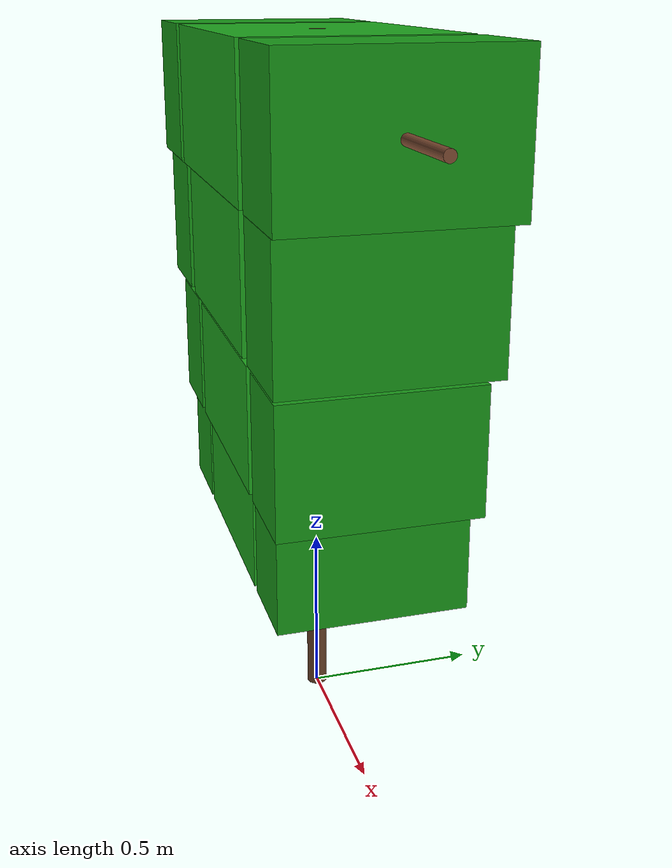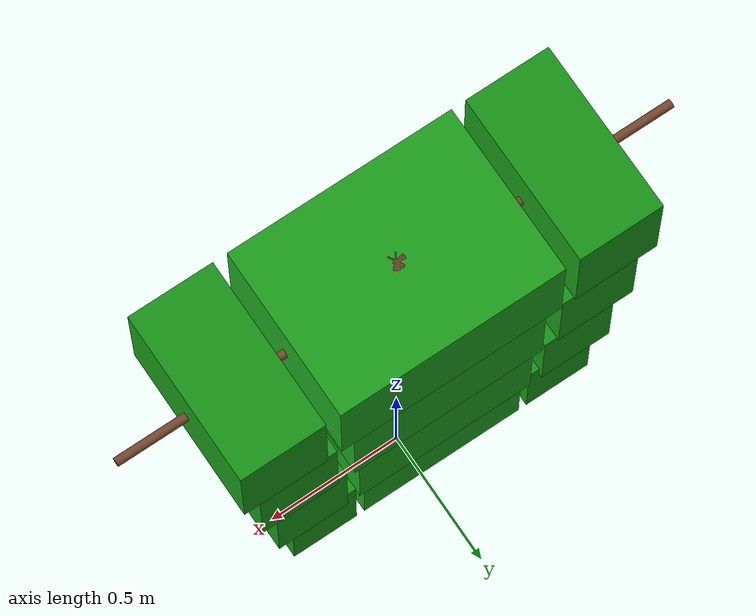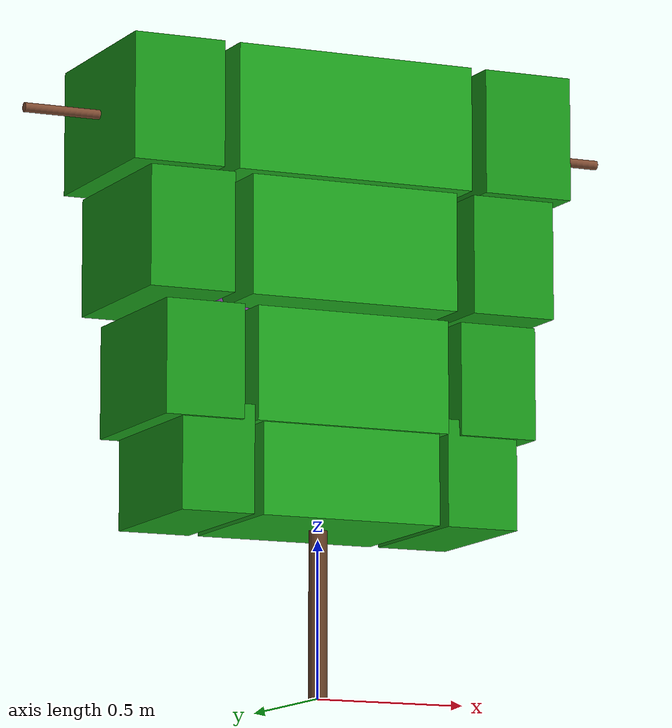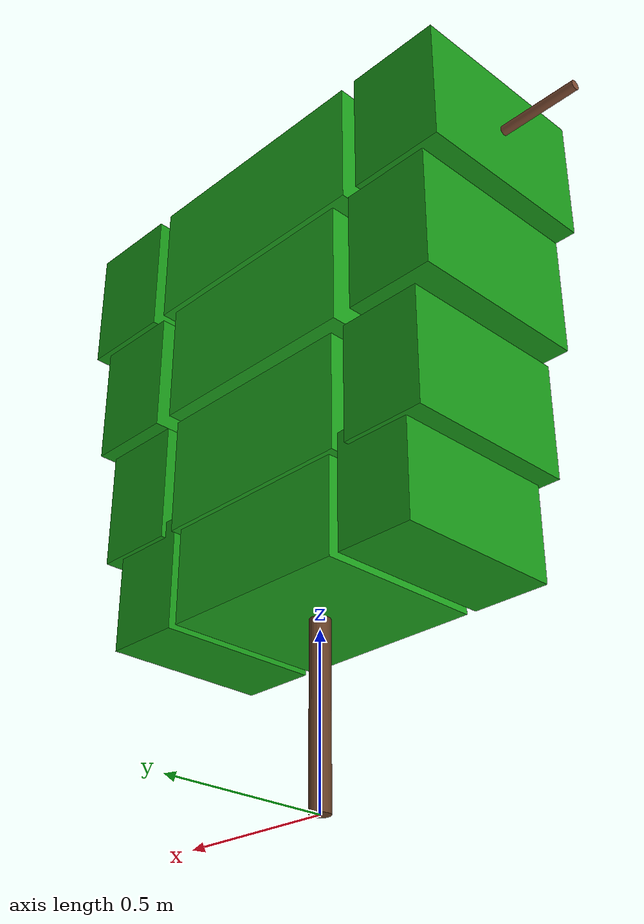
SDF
<?xml version="1.0" ?>
<sdf version="1.6">
  <model name="vine_plant_with_leaves">
    <static>true</static>
    <link name="link">

      <!-- TRONC PRINCIPAL (hauteur 2m) -->
      <collision name="trunk">
        <pose>0 0 1.0 0 0 0</pose>
        <geometry>
          <cylinder>
            <radius>0.03</radius>
            <length>2.0</length>
          </cylinder>
        </geometry>
      </collision>
      <visual name="trunk">
        <pose>0 0 1.0 0 0 0</pose>
        <geometry>
          <cylinder>
            <radius>0.03</radius>
            <length>2.0</length>
          </cylinder>
        </geometry>
        <material>
          <ambient>0.4 0.25 0.15 1</ambient>
          <diffuse>0.4 0.25 0.15 1</diffuse>
        </material>
      </visual>

      <!-- BRANCHES HORIZONTALES -->
      <collision name="branch_left">
        <pose>-0.5 0 1.8 0 1.57 0</pose>
        <geometry>
          <cylinder>
            <radius>0.015</radius>
            <length>1.0</length>
          </cylinder>
        </geometry>
      </collision>
      <visual name="branch_left">
        <pose>-0.5 0 1.8 0 1.57 0</pose>
        <geometry>
          <cylinder>
            <radius>0.015</radius>
            <length>1.0</length>
          </cylinder>
        </geometry>
        <material>
          <ambient>0.5 0.3 0.2 1</ambient>
          <diffuse>0.5 0.3 0.2 1</diffuse>
        </material>
      </visual>

      <collision name="branch_right">
        <pose>0.5 0 1.8 0 1.57 0</pose>
        <geometry>
          <cylinder>
            <radius>0.015</radius>
            <length>1.0</length>
          </cylinder>
        </geometry>
      </collision>
      <visual name="branch_right">
        <pose>0.5 0 1.8 0 1.57 0</pose>
        <geometry>
          <cylinder>
            <radius>0.015</radius>
            <length>1.0</length>
          </cylinder>
        </geometry>
        <material>
          <ambient>0.5 0.3 0.2 1</ambient>
          <diffuse>0.5 0.3 0.2 1</diffuse>
        </material>
      </visual>

      <!-- FEUILLAGE NIVEAU HAUT (1.8m) -->
      <visual name="leaves_left_top">
        <pose>-0.6 0 1.8 0 0 0</pose>
        <geometry>
          <box>
            <size>0.3 0.6 0.4</size>
          </box>
        </geometry>
        <material>
          <ambient>0.1 0.5 0.1 1</ambient>
          <diffuse>0.1 0.6 0.1 1</diffuse>
        </material>
      </visual>

      <visual name="leaves_right_top">
        <pose>0.6 0 1.8 0 0 0</pose>
        <geometry>
          <box>
            <size>0.3 0.6 0.4</size>
          </box>
        </geometry>
        <material>
          <ambient>0.1 0.5 0.1 1</ambient>
          <diffuse>0.1 0.6 0.1 1</diffuse>
        </material>
      </visual>

      <visual name="leaves_center_top">
        <pose>0 0 1.8 0 0 0</pose>
        <geometry>
          <box>
            <size>0.8 0.6 0.4</size>
          </box>
        </geometry>
        <material>
          <ambient>0.12 0.55 0.12 1</ambient>
          <diffuse>0.12 0.65 0.12 1</diffuse>
        </material>
      </visual>

      <!-- FEUILLAGE NIVEAU MOYEN-HAUT (1.4m) -->
      <visual name="leaves_left_mid_high">
        <pose>-0.55 0 1.4 0 0 0</pose>
        <geometry>
          <box>
            <size>0.28 0.58 0.38</size>
          </box>
        </geometry>
        <material>
          <ambient>0.1 0.5 0.1 1</ambient>
          <diffuse>0.1 0.6 0.1 1</diffuse>
        </material>
      </visual>

      <visual name="leaves_right_mid_high">
        <pose>0.55 0 1.4 0 0 0</pose>
        <geometry>
          <box>
            <size>0.28 0.58 0.38</size>
          </box>
        </geometry>
        <material>
          <ambient>0.1 0.5 0.1 1</ambient>
          <diffuse>0.1 0.6 0.1 1</diffuse>
        </material>
      </visual>

      <visual name="leaves_center_mid_high">
        <pose>0 0 1.4 0 0 0</pose>
        <geometry>
          <box>
            <size>0.7 0.58 0.38</size>
          </box>
        </geometry>
        <material>
          <ambient>0.12 0.55 0.12 1</ambient>
          <diffuse>0.12 0.65 0.12 1</diffuse>
        </material>
      </visual>

      <!-- FEUILLAGE NIVEAU MOYEN (1.0m) -->
      <visual name="leaves_left_mid">
        <pose>-0.5 0 1.0 0 0 0</pose>
        <geometry>
          <box>
            <size>0.26 0.55 0.36</size>
          </box>
        </geometry>
        <material>
          <ambient>0.1 0.5 0.1 1</ambient>
          <diffuse>0.1 0.6 0.1 1</diffuse>
        </material>
      </visual>

      <visual name="leaves_right_mid">
        <pose>0.5 0 1.0 0 0 0</pose>
        <geometry>
          <box>
            <size>0.26 0.55 0.36</size>
          </box>
        </geometry>
        <material>
          <ambient>0.1 0.5 0.1 1</ambient>
          <diffuse>0.1 0.6 0.1 1</diffuse>
        </material>
      </visual>

      <visual name="leaves_center_mid">
        <pose>0 0 1.0 0 0 0</pose>
        <geometry>
          <box>
            <size>0.65 0.55 0.36</size>
          </box>
        </geometry>
        <material>
          <ambient>0.12 0.55 0.12 1</ambient>
          <diffuse>0.12 0.65 0.12 1</diffuse>
        </material>
      </visual>

      <!-- FEUILLAGE NIVEAU BAS (0.7m) -->
      <visual name="leaves_left_low">
        <pose>-0.45 0 0.7 0 0 0</pose>
        <geometry>
          <box>
            <size>0.24 0.52 0.34</size>
          </box>
        </geometry>
        <material>
          <ambient>0.1 0.5 0.1 1</ambient>
          <diffuse>0.1 0.6 0.1 1</diffuse>
        </material>
      </visual>

      <visual name="leaves_right_low">
        <pose>0.45 0 0.7 0 0 0</pose>
        <geometry>
          <box>
            <size>0.24 0.52 0.34</size>
          </box>
        </geometry>
        <material>
          <ambient>0.1 0.5 0.1 1</ambient>
          <diffuse>0.1 0.6 0.1 1</diffuse>
        </material>
      </visual>

      <visual name="leaves_center_low">
        <pose>0 0 0.7 0 0 0</pose>
        <geometry>
          <box>
            <size>0.6 0.52 0.34</size>
          </box>
        </geometry>
        <material>
          <ambient>0.12 0.55 0.12 1</ambient>
          <diffuse>0.12 0.65 0.12 1</diffuse>
        </material>
      </visual>

      <!-- GRAPPES DE RAISIN -->
      <visual name="grape_left">
        <pose>-0.3 0 1.2 0 0 0</pose>
        <geometry>
          <sphere>
            <radius>0.08</radius>
          </sphere>
        </geometry>
        <material>
          <ambient>0.4 0.2 0.5 1</ambient>
          <diffuse>0.5 0.25 0.6 1</diffuse>
        </material>
      </visual>

      <visual name="grape_right">
        <pose>0.3 0 0.8 0 0 0</pose>
        <geometry>
          <sphere>
            <radius>0.08</radius>
          </sphere>
        </geometry>
        <material>
          <ambient>0.4 0.2 0.5 1</ambient>
          <diffuse>0.5 0.25 0.6 1</diffuse>
        </material>
      </visual>

    </link>
  </model>
</sdf>
